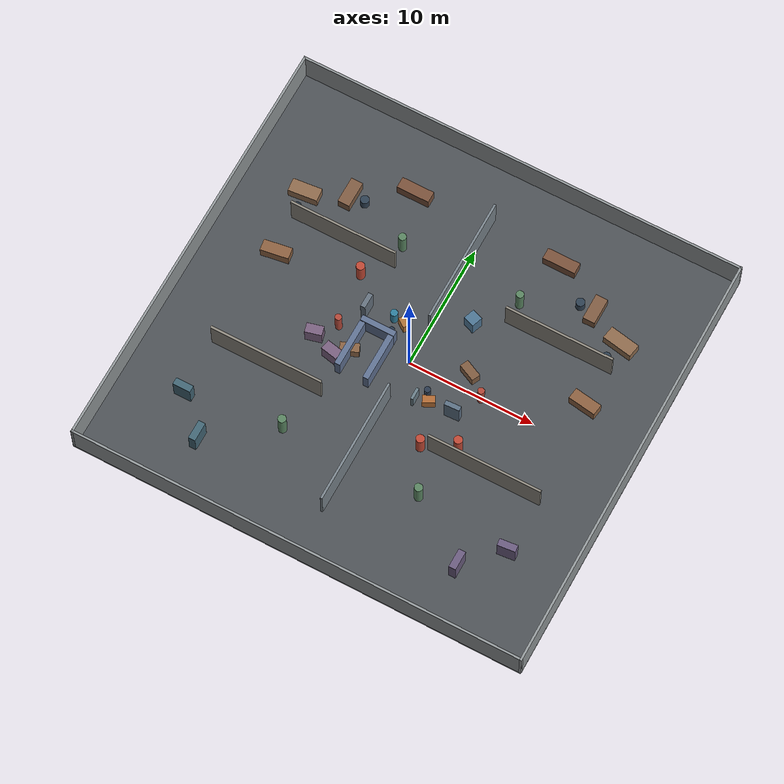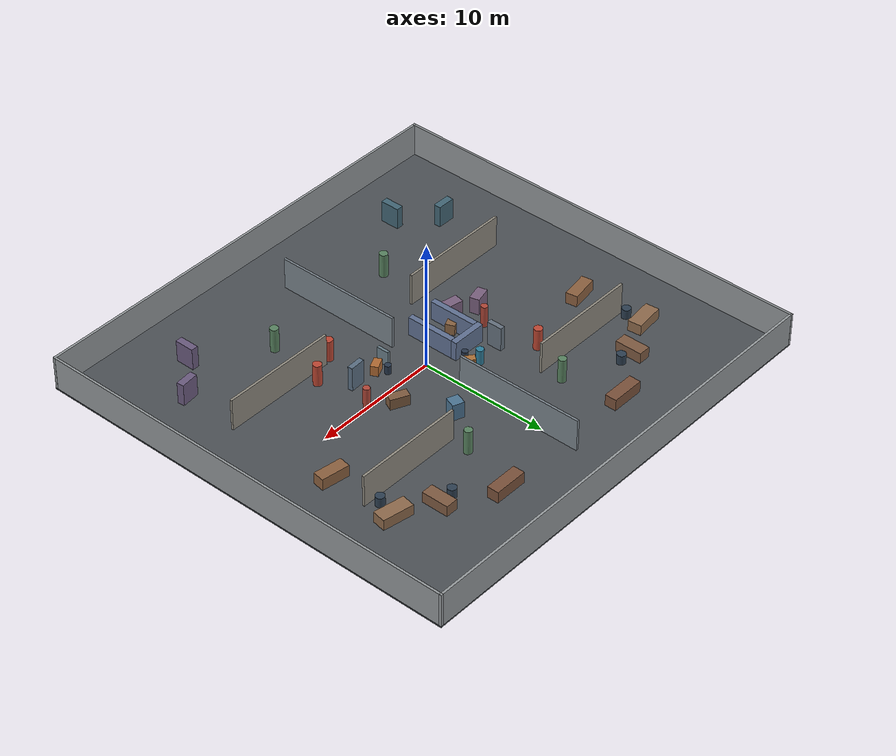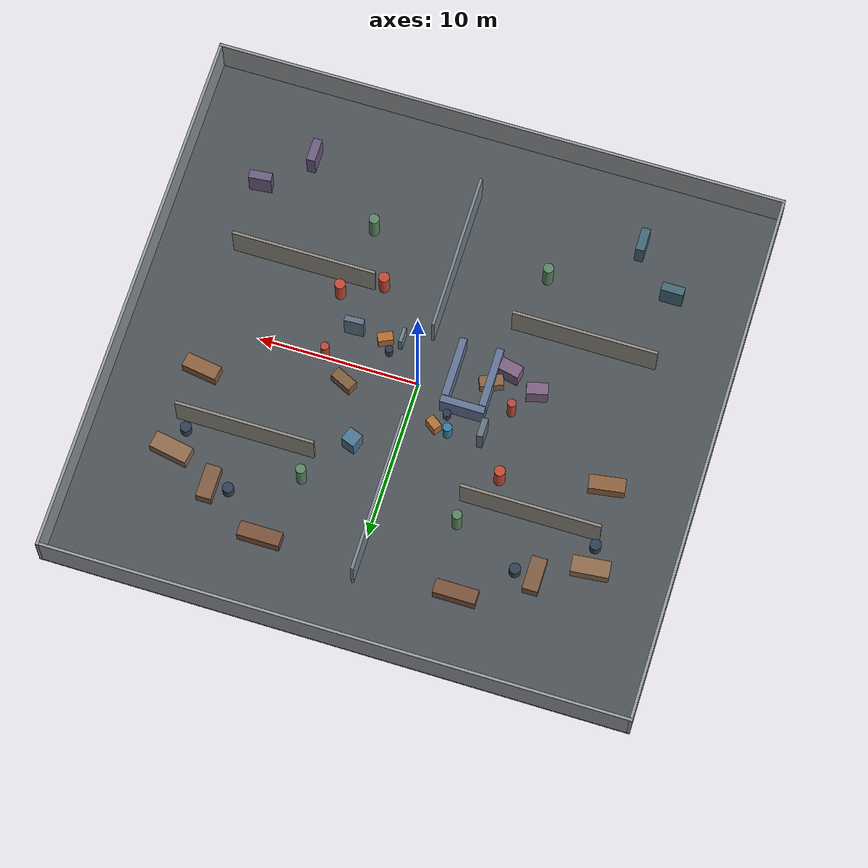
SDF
<?xml version="1.0"?>
<sdf version="1.8">
  <world name="single_floor_planner_showcase">
    <plugin name="gz::sim::systems::Physics" filename="ignition-gazebo-physics-system"/>
    <plugin name="gz::sim::systems::UserCommands" filename="ignition-gazebo-user-commands-system"/>
    <plugin name="gz::sim::systems::SceneBroadcaster" filename="ignition-gazebo-scene-broadcaster-system"/>
    <plugin name="gz::sim::systems::Sensors" filename="ignition-gazebo-sensors-system">
      <render_engine>ogre2</render_engine>
    </plugin>
    <plugin name="gz::sim::systems::Imu" filename="ignition-gazebo-imu-system"/>

    <physics name="single_floor_planner_showcase_physics" type="ignored">
      <max_step_size>0.01</max_step_size>
      <real_time_update_rate>100</real_time_update_rate>
      <real_time_factor>1.0</real_time_factor>
    </physics>
    <gravity>0 0 -9.8</gravity>
    <magnetic_field>6.0e-06 2.3e-05 -4.2e-05</magnetic_field>
    <scene>
      <ambient>0.66 0.67 0.70 1</ambient>
      <background>0.11 0.12 0.14 1</background>
      <shadows>false</shadows>
    </scene>

    <gui fullscreen="0">
      <camera name="user_camera">
        <pose>-11.5 -19.5 8.5 0 0.52 0.72</pose>
        <projection_type>perspective</projection_type>
      </camera>
    </gui>

    <light name="sun" type="directional">
      <cast_shadows>false</cast_shadows>
      <pose>0 0 18 0 0 0</pose>
      <diffuse>0.95 0.95 0.95 1</diffuse>
      <specular>0.12 0.12 0.12 1</specular>
      <attenuation>
        <range>1000</range>
        <constant>0.9</constant>
        <linear>0.01</linear>
        <quadratic>0.001</quadratic>
      </attenuation>
      <direction>-0.25 0.35 -1</direction>
    </light>

    <model name="floor">
      <static>true</static>
      <pose>0 0 -0.05 0 0 0</pose>
      <link name="link">
        <collision name="collision"><geometry><box><size>36 34 0.10</size></box></geometry></collision>
        <visual name="visual"><geometry><box><size>36 34 0.10</size></box></geometry><material><ambient>0.30 0.32 0.34 1</ambient><diffuse>0.30 0.32 0.34 1</diffuse></material></visual>
      </link>
    </model>

    <model name="wall_north">
      <static>true</static>
      <pose>0 16.9 1.3 0 0 0</pose>
      <link name="link">
        <collision name="collision"><geometry><box><size>36 0.18 2.6</size></box></geometry></collision>
        <visual name="visual"><geometry><box><size>36 0.18 2.6</size></box></geometry><material><ambient>0.58 0.60 0.61 1</ambient><diffuse>0.58 0.60 0.61 1</diffuse></material></visual>
      </link>
    </model>
    <model name="wall_south">
      <static>true</static>
      <pose>0 -16.9 1.3 0 0 0</pose>
      <link name="link">
        <collision name="collision"><geometry><box><size>36 0.18 2.6</size></box></geometry></collision>
        <visual name="visual"><geometry><box><size>36 0.18 2.6</size></box></geometry><material><ambient>0.58 0.60 0.61 1</ambient><diffuse>0.58 0.60 0.61 1</diffuse></material></visual>
      </link>
    </model>
    <model name="wall_west">
      <static>true</static>
      <pose>-17.9 0 1.3 0 0 0</pose>
      <link name="link">
        <collision name="collision"><geometry><box><size>0.18 34 2.6</size></box></geometry></collision>
        <visual name="visual"><geometry><box><size>0.18 34 2.6</size></box></geometry><material><ambient>0.58 0.60 0.61 1</ambient><diffuse>0.58 0.60 0.61 1</diffuse></material></visual>
      </link>
    </model>
    <model name="wall_east">
      <static>true</static>
      <pose>17.9 0 1.3 0 0 0</pose>
      <link name="link">
        <collision name="collision"><geometry><box><size>0.18 34 2.6</size></box></geometry></collision>
        <visual name="visual"><geometry><box><size>0.18 34 2.6</size></box></geometry><material><ambient>0.58 0.60 0.61 1</ambient><diffuse>0.58 0.60 0.61 1</diffuse></material></visual>
      </link>
    </model>

    <model name="central_spine_south">
      <static>true</static>
      <pose>0 -8.0 1.25 0 0 0</pose>
      <link name="link">
        <collision name="collision"><geometry><box><size>0.18 10.0 2.5</size></box></geometry></collision>
        <visual name="visual"><geometry><box><size>0.18 10.0 2.5</size></box></geometry><material><ambient>0.48 0.52 0.55 1</ambient><diffuse>0.48 0.52 0.55 1</diffuse></material></visual>
      </link>
    </model>
    <model name="central_spine_north">
      <static>true</static>
      <pose>0 8.0 1.25 0 0 0</pose>
      <link name="link">
        <collision name="collision"><geometry><box><size>0.18 10.0 2.5</size></box></geometry></collision>
        <visual name="visual"><geometry><box><size>0.18 10.0 2.5</size></box></geometry><material><ambient>0.48 0.52 0.55 1</ambient><diffuse>0.48 0.52 0.55 1</diffuse></material></visual>
      </link>
    </model>
    <model name="west_room_divider_south">
      <static>true</static>
      <pose>-8.8 -5.2 1.25 0 0 1.5708</pose>
      <link name="link">
        <collision name="collision"><geometry><box><size>0.18 9.0 2.5</size></box></geometry></collision>
        <visual name="visual"><geometry><box><size>0.18 9.0 2.5</size></box></geometry><material><ambient>0.56 0.54 0.50 1</ambient><diffuse>0.56 0.54 0.50 1</diffuse></material></visual>
      </link>
    </model>
    <model name="east_room_divider_south">
      <static>true</static>
      <pose>8.8 -5.2 1.25 0 0 1.5708</pose>
      <link name="link">
        <collision name="collision"><geometry><box><size>0.18 9.0 2.5</size></box></geometry></collision>
        <visual name="visual"><geometry><box><size>0.18 9.0 2.5</size></box></geometry><material><ambient>0.56 0.54 0.50 1</ambient><diffuse>0.56 0.54 0.50 1</diffuse></material></visual>
      </link>
    </model>
    <model name="west_room_divider_north">
      <static>true</static>
      <pose>-8.8 6.2 1.25 0 0 1.5708</pose>
      <link name="link">
        <collision name="collision"><geometry><box><size>0.18 8.6 2.5</size></box></geometry></collision>
        <visual name="visual"><geometry><box><size>0.18 8.6 2.5</size></box></geometry><material><ambient>0.56 0.54 0.50 1</ambient><diffuse>0.56 0.54 0.50 1</diffuse></material></visual>
      </link>
    </model>
    <model name="east_room_divider_north">
      <static>true</static>
      <pose>8.8 6.2 1.25 0 0 1.5708</pose>
      <link name="link">
        <collision name="collision"><geometry><box><size>0.18 8.6 2.5</size></box></geometry></collision>
        <visual name="visual"><geometry><box><size>0.18 8.6 2.5</size></box></geometry><material><ambient>0.56 0.54 0.50 1</ambient><diffuse>0.56 0.54 0.50 1</diffuse></material></visual>
      </link>
    </model>

    <model name="server_rack_west_a">
      <static>true</static>
      <pose>-13.0 -9.8 0.85 0 0 0</pose>
      <link name="link">
        <collision name="collision"><geometry><box><size>1.4 0.55 1.7</size></box></geometry></collision>
        <visual name="visual"><geometry><box><size>1.4 0.55 1.7</size></box></geometry><material><ambient>0.26 0.40 0.46 1</ambient><diffuse>0.26 0.40 0.46 1</diffuse></material></visual>
      </link>
    </model>
    <model name="server_rack_west_b">
      <static>true</static>
      <pose>-10.4 -12.4 0.85 0 0 1.5708</pose>
      <link name="link">
        <collision name="collision"><geometry><box><size>1.5 0.55 1.7</size></box></geometry></collision>
        <visual name="visual"><geometry><box><size>1.5 0.55 1.7</size></box></geometry><material><ambient>0.26 0.40 0.46 1</ambient><diffuse>0.26 0.40 0.46 1</diffuse></material></visual>
      </link>
    </model>
    <model name="server_rack_east_a">
      <static>true</static>
      <pose>13.0 -9.6 0.85 0 0 0.10</pose>
      <link name="link">
        <collision name="collision"><geometry><box><size>1.4 0.55 1.7</size></box></geometry></collision>
        <visual name="visual"><geometry><box><size>1.4 0.55 1.7</size></box></geometry><material><ambient>0.42 0.36 0.50 1</ambient><diffuse>0.42 0.36 0.50 1</diffuse></material></visual>
      </link>
    </model>
    <model name="server_rack_east_b">
      <static>true</static>
      <pose>10.4 -12.2 0.85 0 0 1.5708</pose>
      <link name="link">
        <collision name="collision"><geometry><box><size>1.5 0.55 1.7</size></box></geometry></collision>
        <visual name="visual"><geometry><box><size>1.5 0.55 1.7</size></box></geometry><material><ambient>0.42 0.36 0.50 1</ambient><diffuse>0.42 0.36 0.50 1</diffuse></material></visual>
      </link>
    </model>
    <model name="lab_table_west">
      <static>true</static>
      <pose>-12.6 3.0 0.45 0 0 0.15</pose>
      <link name="link">
        <collision name="collision"><geometry><box><size>2.2 0.9 0.9</size></box></geometry></collision>
        <visual name="visual"><geometry><box><size>2.2 0.9 0.9</size></box></geometry><material><ambient>0.55 0.38 0.25 1</ambient><diffuse>0.55 0.38 0.25 1</diffuse></material></visual>
      </link>
    </model>
    <model name="lab_table_east">
      <static>true</static>
      <pose>12.6 3.0 0.45 0 0 -0.15</pose>
      <link name="link">
        <collision name="collision"><geometry><box><size>2.2 0.9 0.9</size></box></geometry></collision>
        <visual name="visual"><geometry><box><size>2.2 0.9 0.9</size></box></geometry><material><ambient>0.55 0.38 0.25 1</ambient><diffuse>0.55 0.38 0.25 1</diffuse></material></visual>
      </link>
    </model>
    <model name="workbench_north_west">
      <static>true</static>
      <pose>-6.0 12.0 0.45 0 0 0</pose>
      <link name="link">
        <collision name="collision"><geometry><box><size>2.6 0.9 0.9</size></box></geometry></collision>
        <visual name="visual"><geometry><box><size>2.6 0.9 0.9</size></box></geometry><material><ambient>0.48 0.32 0.23 1</ambient><diffuse>0.48 0.32 0.23 1</diffuse></material></visual>
      </link>
    </model>
    <model name="workbench_north_east">
      <static>true</static>
      <pose>6.0 12.0 0.45 0 0 0</pose>
      <link name="link">
        <collision name="collision"><geometry><box><size>2.6 0.9 0.9</size></box></geometry></collision>
        <visual name="visual"><geometry><box><size>2.6 0.9 0.9</size></box></geometry><material><ambient>0.48 0.32 0.23 1</ambient><diffuse>0.48 0.32 0.23 1</diffuse></material></visual>
      </link>
    </model>

    <model name="office_desk_west_1">
      <static>true</static>
      <pose>-13.1 8.2 0.42 0 0 0.10</pose>
      <link name="link">
        <collision name="collision"><geometry><box><size>2.3 1.05 0.84</size></box></geometry></collision>
        <visual name="visual"><geometry><box><size>2.3 1.05 0.84</size></box></geometry><material><ambient>0.56 0.42 0.30 1</ambient><diffuse>0.56 0.42 0.30 1</diffuse></material></visual>
      </link>
    </model>
    <model name="office_desk_west_2">
      <static>true</static>
      <pose>-10.1 9.6 0.42 0 0 1.5708</pose>
      <link name="link">
        <collision name="collision"><geometry><box><size>2.1 0.95 0.84</size></box></geometry></collision>
        <visual name="visual"><geometry><box><size>2.1 0.95 0.84</size></box></geometry><material><ambient>0.50 0.36 0.26 1</ambient><diffuse>0.50 0.36 0.26 1</diffuse></material></visual>
      </link>
    </model>
    <model name="office_chair_west_1">
      <static>true</static>
      <pose>-13.0 6.8 0.38 0 0 0</pose>
      <link name="link">
        <collision name="collision"><geometry><cylinder><radius>0.34</radius><length>0.76</length></cylinder></geometry></collision>
        <visual name="visual"><geometry><cylinder><radius>0.34</radius><length>0.76</length></cylinder></geometry><material><ambient>0.18 0.25 0.32 1</ambient><diffuse>0.18 0.25 0.32 1</diffuse></material></visual>
      </link>
    </model>
    <model name="office_chair_west_2">
      <static>true</static>
      <pose>-8.9 9.6 0.38 0 0 0</pose>
      <link name="link">
        <collision name="collision"><geometry><cylinder><radius>0.34</radius><length>0.76</length></cylinder></geometry></collision>
        <visual name="visual"><geometry><cylinder><radius>0.34</radius><length>0.76</length></cylinder></geometry><material><ambient>0.18 0.25 0.32 1</ambient><diffuse>0.18 0.25 0.32 1</diffuse></material></visual>
      </link>
    </model>

    <model name="office_desk_east_1">
      <static>true</static>
      <pose>12.7 8.4 0.42 0 0 -0.18</pose>
      <link name="link">
        <collision name="collision"><geometry><box><size>2.4 1.05 0.84</size></box></geometry></collision>
        <visual name="visual"><geometry><box><size>2.4 1.05 0.84</size></box></geometry><material><ambient>0.56 0.42 0.30 1</ambient><diffuse>0.56 0.42 0.30 1</diffuse></material></visual>
      </link>
    </model>
    <model name="office_desk_east_2">
      <static>true</static>
      <pose>9.9 9.8 0.42 0 0 1.5708</pose>
      <link name="link">
        <collision name="collision"><geometry><box><size>2.1 0.95 0.84</size></box></geometry></collision>
        <visual name="visual"><geometry><box><size>2.1 0.95 0.84</size></box></geometry><material><ambient>0.50 0.36 0.26 1</ambient><diffuse>0.50 0.36 0.26 1</diffuse></material></visual>
      </link>
    </model>
    <model name="office_chair_east_1">
      <static>true</static>
      <pose>12.3 6.9 0.38 0 0 0</pose>
      <link name="link">
        <collision name="collision"><geometry><cylinder><radius>0.34</radius><length>0.76</length></cylinder></geometry></collision>
        <visual name="visual"><geometry><cylinder><radius>0.34</radius><length>0.76</length></cylinder></geometry><material><ambient>0.18 0.25 0.32 1</ambient><diffuse>0.18 0.25 0.32 1</diffuse></material></visual>
      </link>
    </model>
    <model name="office_chair_east_2">
      <static>true</static>
      <pose>8.7 9.8 0.38 0 0 0</pose>
      <link name="link">
        <collision name="collision"><geometry><cylinder><radius>0.34</radius><length>0.76</length></cylinder></geometry></collision>
        <visual name="visual"><geometry><cylinder><radius>0.34</radius><length>0.76</length></cylinder></geometry><material><ambient>0.18 0.25 0.32 1</ambient><diffuse>0.18 0.25 0.32 1</diffuse></material></visual>
      </link>
    </model>

    <model name="u_trap_left_wall">
      <static>true</static>
      <pose>-4.2 -1.2 0.75 0 0 0</pose>
      <link name="link">
        <collision name="collision"><geometry><box><size>0.45 3.8 1.5</size></box></geometry></collision>
        <visual name="visual"><geometry><box><size>0.45 3.8 1.5</size></box></geometry><material><ambient>0.38 0.45 0.58 1</ambient><diffuse>0.38 0.45 0.58 1</diffuse></material></visual>
      </link>
    </model>
    <model name="u_trap_right_wall">
      <static>true</static>
      <pose>-1.9 -1.2 0.75 0 0 0</pose>
      <link name="link">
        <collision name="collision"><geometry><box><size>0.45 3.8 1.5</size></box></geometry></collision>
        <visual name="visual"><geometry><box><size>0.45 3.8 1.5</size></box></geometry><material><ambient>0.38 0.45 0.58 1</ambient><diffuse>0.38 0.45 0.58 1</diffuse></material></visual>
      </link>
    </model>
    <model name="u_trap_back_wall">
      <static>true</static>
      <pose>-3.05 0.95 0.75 0 0 1.5708</pose>
      <link name="link">
        <collision name="collision"><geometry><box><size>0.45 2.75 1.5</size></box></geometry></collision>
        <visual name="visual"><geometry><box><size>0.45 2.75 1.5</size></box></geometry><material><ambient>0.38 0.45 0.58 1</ambient><diffuse>0.38 0.45 0.58 1</diffuse></material></visual>
      </link>
    </model>

    <model name="narrow_gap_box_west">
      <static>true</static>
      <pose>-7.0 -1.4 0.65 0 0 0.25</pose>
      <link name="link">
        <collision name="collision"><geometry><box><size>1.3 0.75 1.3</size></box></geometry></collision>
        <visual name="visual"><geometry><box><size>1.3 0.75 1.3</size></box></geometry><material><ambient>0.48 0.38 0.50 1</ambient><diffuse>0.48 0.38 0.50 1</diffuse></material></visual>
      </link>
    </model>
    <model name="narrow_gap_box_east">
      <static>true</static>
      <pose>-5.1 -2.2 0.65 0 0 -0.20</pose>
      <link name="link">
        <collision name="collision"><geometry><box><size>1.35 0.8 1.3</size></box></geometry></collision>
        <visual name="visual"><geometry><box><size>1.35 0.8 1.3</size></box></geometry><material><ambient>0.48 0.38 0.50 1</ambient><diffuse>0.48 0.38 0.50 1</diffuse></material></visual>
      </link>
    </model>

    <model name="static_pedestrian_1">
      <static>true</static>
      <pose>3.8 -5.4 0.85 0 0 0</pose>
      <link name="link">
        <collision name="collision"><geometry><cylinder><radius>0.33</radius><length>1.7</length></cylinder></geometry></collision>
        <visual name="visual"><geometry><cylinder><radius>0.33</radius><length>1.7</length></cylinder></geometry><material><ambient>0.75 0.28 0.20 1</ambient><diffuse>0.75 0.28 0.20 1</diffuse></material></visual>
      </link>
    </model>
    <model name="static_pedestrian_2">
      <static>true</static>
      <pose>6.2 -4.2 0.85 0 0 0</pose>
      <link name="link">
        <collision name="collision"><geometry><cylinder><radius>0.33</radius><length>1.7</length></cylinder></geometry></collision>
        <visual name="visual"><geometry><cylinder><radius>0.33</radius><length>1.7</length></cylinder></geometry><material><ambient>0.75 0.28 0.20 1</ambient><diffuse>0.75 0.28 0.20 1</diffuse></material></visual>
      </link>
    </model>
    <model name="static_pedestrian_3">
      <static>true</static>
      <pose>-6.4 4.4 0.85 0 0 0</pose>
      <link name="link">
        <collision name="collision"><geometry><cylinder><radius>0.33</radius><length>1.7</length></cylinder></geometry></collision>
        <visual name="visual"><geometry><cylinder><radius>0.33</radius><length>1.7</length></cylinder></geometry><material><ambient>0.75 0.28 0.20 1</ambient><diffuse>0.75 0.28 0.20 1</diffuse></material></visual>
      </link>
    </model>

    <model name="central_office_table_1">
      <static>true</static>
      <pose>-4.2 -1.25 0.42 0 0 0.38</pose>
      <link name="link">
        <collision name="collision"><geometry><box><size>1.45 0.70 0.84</size></box></geometry></collision>
        <visual name="visual"><geometry><box><size>1.45 0.70 0.84</size></box></geometry><material><ambient>0.54 0.39 0.26 1</ambient><diffuse>0.54 0.39 0.26 1</diffuse></material></visual>
      </link>
    </model>
    <model name="central_office_table_2">
      <static>true</static>
      <pose>4.25 1.25 0.42 0 0 -0.44</pose>
      <link name="link">
        <collision name="collision"><geometry><box><size>1.45 0.70 0.84</size></box></geometry></collision>
        <visual name="visual"><geometry><box><size>1.45 0.70 0.84</size></box></geometry><material><ambient>0.50 0.36 0.25 1</ambient><diffuse>0.50 0.36 0.25 1</diffuse></material></visual>
      </link>
    </model>
    <model name="central_bookshelf_1">
      <static>true</static>
      <pose>-4.65 2.15 0.95 0 0 1.5708</pose>
      <link name="link">
        <collision name="collision"><geometry><box><size>1.20 0.38 1.9</size></box></geometry></collision>
        <visual name="visual"><geometry><box><size>1.20 0.38 1.9</size></box></geometry><material><ambient>0.40 0.45 0.50 1</ambient><diffuse>0.40 0.45 0.50 1</diffuse></material></visual>
      </link>
    </model>
    <model name="central_bookshelf_2">
      <static>true</static>
      <pose>4.65 -2.15 0.95 0 0 0.05</pose>
      <link name="link">
        <collision name="collision"><geometry><box><size>1.20 0.38 1.9</size></box></geometry></collision>
        <visual name="visual"><geometry><box><size>1.20 0.38 1.9</size></box></geometry><material><ambient>0.36 0.44 0.52 1</ambient><diffuse>0.36 0.44 0.52 1</diffuse></material></visual>
      </link>
    </model>
    <model name="central_conference_chair_1">
      <static>true</static>
      <pose>-2.25 1.45 0.34 0 0 0</pose>
      <link name="link">
        <collision name="collision"><geometry><cylinder><radius>0.24</radius><length>0.68</length></cylinder></geometry></collision>
        <visual name="visual"><geometry><cylinder><radius>0.24</radius><length>0.68</length></cylinder></geometry><material><ambient>0.16 0.22 0.30 1</ambient><diffuse>0.16 0.22 0.30 1</diffuse></material></visual>
      </link>
    </model>
    <model name="central_conference_chair_2">
      <static>true</static>
      <pose>2.25 -1.45 0.34 0 0 0</pose>
      <link name="link">
        <collision name="collision"><geometry><cylinder><radius>0.24</radius><length>0.68</length></cylinder></geometry></collision>
        <visual name="visual"><geometry><cylinder><radius>0.24</radius><length>0.68</length></cylinder></geometry><material><ambient>0.16 0.22 0.30 1</ambient><diffuse>0.16 0.22 0.30 1</diffuse></material></visual>
      </link>
    </model>
    <model name="central_static_person_1">
      <static>true</static>
      <pose>-5.85 0.10 0.85 0 0 0</pose>
      <link name="link">
        <collision name="collision"><geometry><cylinder><radius>0.26</radius><length>1.7</length></cylinder></geometry></collision>
        <visual name="visual"><geometry><cylinder><radius>0.26</radius><length>1.7</length></cylinder></geometry><material><ambient>0.70 0.28 0.22 1</ambient><diffuse>0.70 0.28 0.22 1</diffuse></material></visual>
      </link>
    </model>
    <model name="central_static_person_2">
      <static>true</static>
      <pose>5.85 -0.10 0.85 0 0 0</pose>
      <link name="link">
        <collision name="collision"><geometry><cylinder><radius>0.26</radius><length>1.7</length></cylinder></geometry></collision>
        <visual name="visual"><geometry><cylinder><radius>0.26</radius><length>1.7</length></cylinder></geometry><material><ambient>0.70 0.28 0.22 1</ambient><diffuse>0.70 0.28 0.22 1</diffuse></material></visual>
      </link>
    </model>
    <model name="central_service_cart">
      <static>true</static>
      <pose>-1.70 2.35 0.45 0 0 -0.62</pose>
      <link name="link">
        <collision name="collision"><geometry><box><size>0.82 0.55 0.9</size></box></geometry></collision>
        <visual name="visual"><geometry><box><size>0.82 0.55 0.9</size></box></geometry><material><ambient>0.68 0.45 0.22 1</ambient><diffuse>0.68 0.45 0.22 1</diffuse></material></visual>
      </link>
    </model>
    <model name="central_low_partition">
      <static>true</static>
      <pose>1.70 -2.35 0.60 0 0 1.5708</pose>
      <link name="link">
        <collision name="collision"><geometry><box><size>0.95 0.22 1.2</size></box></geometry></collision>
        <visual name="visual"><geometry><box><size>0.95 0.22 1.2</size></box></geometry><material><ambient>0.42 0.50 0.54 1</ambient><diffuse>0.42 0.50 0.54 1</diffuse></material></visual>
      </link>
    </model>

    <model name="column_south_west">
      <static>true</static>
      <pose>-5.5 -8.8 0.95 0 0 0</pose>
      <link name="link">
        <collision name="collision"><geometry><cylinder><radius>0.32</radius><length>1.9</length></cylinder></geometry></collision>
        <visual name="visual"><geometry><cylinder><radius>0.32</radius><length>1.9</length></cylinder></geometry><material><ambient>0.35 0.52 0.38 1</ambient><diffuse>0.35 0.52 0.38 1</diffuse></material></visual>
      </link>
    </model>
    <model name="column_south_east">
      <static>true</static>
      <pose>5.5 -8.8 0.95 0 0 0</pose>
      <link name="link">
        <collision name="collision"><geometry><cylinder><radius>0.32</radius><length>1.9</length></cylinder></geometry></collision>
        <visual name="visual"><geometry><cylinder><radius>0.32</radius><length>1.9</length></cylinder></geometry><material><ambient>0.35 0.52 0.38 1</ambient><diffuse>0.35 0.52 0.38 1</diffuse></material></visual>
      </link>
    </model>
    <model name="column_north_west">
      <static>true</static>
      <pose>-4.8 7.8 0.95 0 0 0</pose>
      <link name="link">
        <collision name="collision"><geometry><cylinder><radius>0.30</radius><length>1.9</length></cylinder></geometry></collision>
        <visual name="visual"><geometry><cylinder><radius>0.30</radius><length>1.9</length></cylinder></geometry><material><ambient>0.35 0.52 0.38 1</ambient><diffuse>0.35 0.52 0.38 1</diffuse></material></visual>
      </link>
    </model>
    <model name="column_north_east">
      <static>true</static>
      <pose>4.8 7.8 0.95 0 0 0</pose>
      <link name="link">
        <collision name="collision"><geometry><cylinder><radius>0.30</radius><length>1.9</length></cylinder></geometry></collision>
        <visual name="visual"><geometry><cylinder><radius>0.30</radius><length>1.9</length></cylinder></geometry><material><ambient>0.35 0.52 0.38 1</ambient><diffuse>0.35 0.52 0.38 1</diffuse></material></visual>
      </link>
    </model>

    <model name="inspection_cart_static">
      <static>true</static>
      <pose>2.7 -2.1 0.40 0 0 0.45</pose>
      <link name="link">
        <collision name="collision"><geometry><box><size>0.95 0.58 0.8</size></box></geometry></collision>
        <visual name="visual"><geometry><box><size>0.95 0.58 0.8</size></box></geometry><material><ambient>0.70 0.42 0.20 1</ambient><diffuse>0.70 0.42 0.20 1</diffuse></material></visual>
      </link>
    </model>
    <model name="charging_pillar">
      <static>true</static>
      <pose>-2.6 2.5 0.60 0 0 0</pose>
      <link name="link">
        <collision name="collision"><geometry><cylinder><radius>0.28</radius><length>1.2</length></cylinder></geometry></collision>
        <visual name="visual"><geometry><cylinder><radius>0.28</radius><length>1.2</length></cylinder></geometry><material><ambient>0.18 0.50 0.62 1</ambient><diffuse>0.18 0.50 0.62 1</diffuse></material></visual>
      </link>
    </model>
    <model name="triage_kiosk">
      <static>true</static>
      <pose>2.6 4.8 0.65 0 0 -0.35</pose>
      <link name="link">
        <collision name="collision"><geometry><box><size>0.9 0.9 1.3</size></box></geometry></collision>
        <visual name="visual"><geometry><box><size>0.9 0.9 1.3</size></box></geometry><material><ambient>0.30 0.46 0.58 1</ambient><diffuse>0.30 0.46 0.58 1</diffuse></material></visual>
      </link>
    </model>
  </world>
</sdf>
